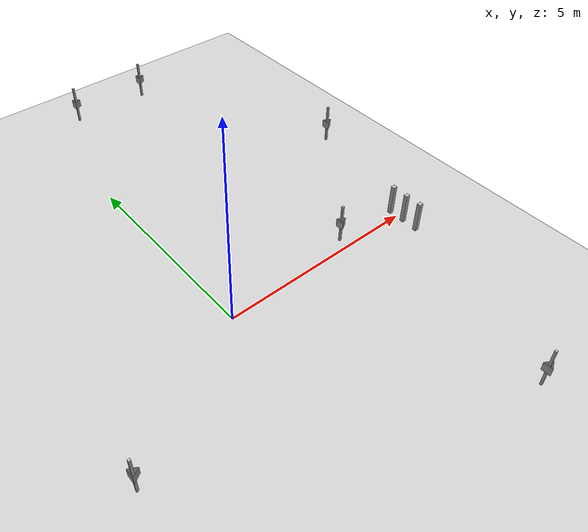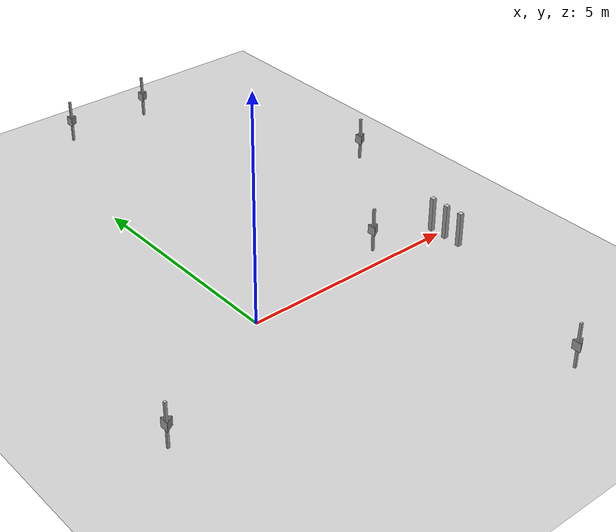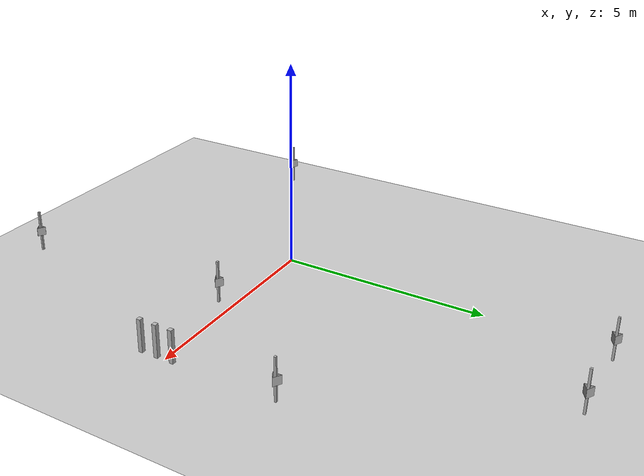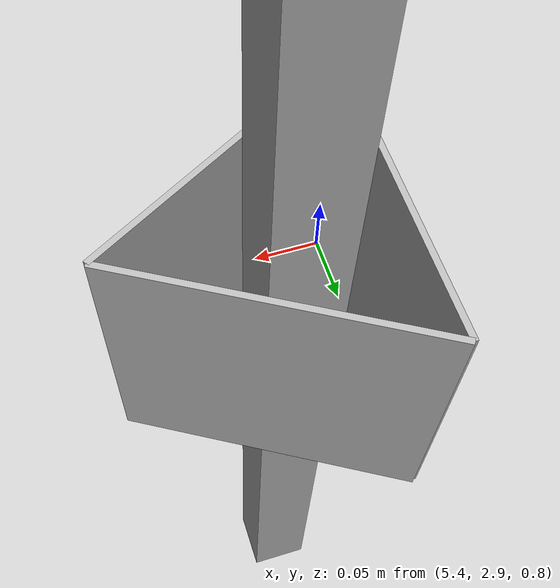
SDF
<sdf version="1.7">
 <world name="default">
  <light name="sun" type="directional">
   <pose>0 0 10 0 -0 0</pose>
   <diffuse>0.8 0.8 0.8 1</diffuse>
   <specular>0.2 0.2 0.2 1</specular>
   <attenuation>
    <range>1000</range>
    <constant>0.9</constant>
    <linear>0.01</linear>
    <quadratic>0.001</quadratic>
   </attenuation>
   <direction>-0.5 0.1 -0.9</direction>
   <spot><inner_angle>0</inner_angle><outer_angle>0</outer_angle><falloff>0</falloff></spot>
  </light>
  <model name="ground_plane">
   <static>1</static>
   <link name="link">
    <collision name="collision">
     <geometry><plane><normal>0 0 1</normal><size>100 100</size></plane></geometry>
     <surface><friction><ode><mu>100</mu><mu2>50</mu2></ode></friction></surface>
    </collision>
    <visual name="visual">
     <cast_shadows>0</cast_shadows>
     <geometry><plane><normal>0 0 1</normal><size>100 100</size></plane></geometry>
     <material>
      <script><uri>file://media/materials/scripts/gazebo.material</uri><name>Gazebo/Grey</name></script>
     </material>
    </visual>
   </link>
  </model>
  <model name="entorno">
   <pose>-0.001458 0.000433 0.381684 -1e-06 -0.003698 -8.5e-05</pose>
   <link name="poste_start">
    <pose>3.06 0 0.5 0 0 0</pose>
    <collision name="collision"><geometry><box><size>0.05 0.05 1.0</size></box></geometry></collision>
    <visual name="visual"><geometry><box><size>0.05 0.05 1.0</size></box></geometry></visual>
   </link>
   <link name="poste_1">
    <pose>3.255 -5.1 0.5 0 0 0</pose>
    <collision name="collision"><geometry><box><size>0.05 0.05 1.0</size></box></geometry></collision>
    <visual name="visual"><geometry><box><size>0.05 0.05 1.0</size></box></geometry></visual>
   </link>
   <link name="poste_2">
    <pose>5.46 3 0.5 0 0 0</pose>
    <collision name="collision"><geometry><box><size>0.05 0.05 1.0</size></box></geometry></collision>
    <visual name="visual"><geometry><box><size>0.05 0.05 1.0</size></box></geometry></visual>
   </link>
   <link name="poste3">
    <pose>-3.545 -2.1 0.5 0 0 0</pose>
    <collision name="collision"><geometry><box><size>0.05 0.05 1.0</size></box></geometry></collision>
    <visual name="visual"><geometry><box><size>0.05 0.05 1.0</size></box></geometry></visual>
   </link>
   <link name="poste_gate_1">
    <pose>.86 8 0.5 0 0 0</pose>
    <collision name="collision"><geometry><box><size>0.05 0.05 1.0</size></box></geometry></collision>
    <visual name="visual"><geometry><box><size>0.05 0.05 1.0</size></box></geometry></visual>
   </link>
   <link name="poste_gate_2">
    <pose>2.86 8 0.5 0 0 0</pose>
    <collision name="collision"><geometry><box><size>0.05 0.05 1.0</size></box></geometry></collision>
    <visual name="visual"><geometry><box><size>0.05 0.05 1.0</size></box></geometry></visual>
   </link>
   <link name="obstacle1">
    <pose>5 0.2 0 0 -0 0</pose>
    <collision name="collision"><geometry><box><size>0.1 0.1 0.8</size></box></geometry></collision>
    <visual name="visual"><geometry><box><size>0.1 0.1 0.8</size></box></geometry></visual>
    <inertial>
     <inertia><ixx>1</ixx><ixy>0</ixy><ixz>0</ixz><iyy>1</iyy><iyz>0</iyz><izz>1</izz></inertia>
     <mass>1</mass>
    </inertial>
   </link>
   <link name="obstacle2">
    <pose>5 -0.2 0 0 -0 0</pose>
    <collision name="collision"><geometry><box><size>0.1 0.1 0.8</size></box></geometry></collision>
    <visual name="visual"><geometry><box><size>0.1 0.1 0.8</size></box></geometry></visual>
    <inertial>
     <inertia><ixx>1</ixx><ixy>0</ixy><ixz>0</ixz><iyy>1</iyy><iyz>0</iyz><izz>1</izz></inertia>
     <mass>1</mass>
    </inertial>
   </link>
   <link name="obstacle3">
    <pose>5 -0.6 0 0 -0 0</pose>
    <collision name="collision"><geometry><box><size>0.1 0.1 0.8</size></box></geometry></collision>
    <visual name="visual"><geometry><box><size>0.1 0.1 0.8</size></box></geometry></visual>
    <inertial>
     <inertia><ixx>1</ixx><ixy>0</ixy><ixz>0</ixz><iyy>1</iyy><iyz>0</iyz><izz>1</izz></inertia>
     <mass>1</mass>
    </inertial>
   </link>
  </model>
  <gravity>0 0 -9.8</gravity>
  <magnetic_field>6e-06 2.3e-05 -4.2e-05</magnetic_field>
  <atmosphere type="adiabatic"/>
  <physics type="ode">
   <max_step_size>0.001</max_step_size>
   <real_time_factor>1</real_time_factor>
   <real_time_update_rate>1000</real_time_update_rate>
  </physics>
  <scene><ambient>0.4 0.4 0.4 1</ambient><background>0.7 0.7 0.7 1</background><shadows>1</shadows></scene>
  <spherical_coordinates>
   <surface_model>EARTH_WGS84</surface_model>
   <latitude_deg>0</latitude_deg>
   <longitude_deg>0</longitude_deg>
   <elevation>0</elevation>
   <heading_deg>0</heading_deg>
  </spherical_coordinates>
  <model name="start">
   <static>1</static>
   <link name="link">
    <visual name="visual">
     <geometry><mesh><uri>model://start/meshes/start.dae</uri><scale>0.4 0.4 0.4</scale></mesh></geometry>
    </visual>
   </link>
   <pose>3 0 0.8 0 -0 3.14159</pose>
  </model>
  <model name="start_1">
   <static>1</static>
   <link name="link">
    <visual name="visual">
     <geometry><mesh><uri>model://start/meshes/start.dae</uri><scale>0.4 0.4 0.4</scale></mesh></geometry>
    </visual>
   </link>
   <pose>3.0866 0.05 0.8 0 -0 1.0472</pose>
  </model>
  <model name="start_1_clone">
   <static>1</static>
   <link name="link">
    <visual name="visual">
     <geometry><mesh><uri>model://start/meshes/start.dae</uri><scale>0.4 0.4 0.4</scale></mesh></geometry>
    </visual>
   </link>
   <pose>3.0866 -0.05 0.8 0 0 -1.0472</pose>
  </model>
  <model name="post1">
   <static>1</static>
   <link name="link">
    <visual name="visual">
     <geometry><mesh><uri>model://post1/meshes/post1.dae</uri><scale>0.4 0.4 0.4</scale></mesh></geometry>
    </visual>
   </link>
   <pose>3.2 -5.1 0.8 0 -0 -3.14159</pose>
  </model>
  <model name="post1_0">
   <static>1</static>
   <link name="link">
    <visual name="visual">
     <geometry><mesh><uri>model://post1/meshes/post1.dae</uri><scale>0.4 0.4 0.4</scale></mesh></geometry>
    </visual>
   </link>
   <pose>3.2866 -5.15 0.8 0 0 -1.0472</pose>
  </model>
  <model name="post1_1">
   <static>1</static>
   <link name="link">
    <visual name="visual">
     <geometry><mesh><uri>model://post1/meshes/post1.dae</uri><scale>0.4 0.4 0.4</scale></mesh></geometry>
    </visual>
   </link>
   <pose>3.2866 -5.05 0.8 0 -0 1.0472</pose>
  </model>
  <model name="post2">
   <static>1</static>
   <link name="link">
    <visual name="visual">
     <geometry><mesh><uri>model://post2/meshes/post2.dae</uri><scale>0.4 0.4 0.4</scale></mesh></geometry>
    </visual>
   </link>
   <pose>5.4 3 0.8 0 -0 -3.14159</pose>
  </model>
  <model name="post2_0">
   <static>1</static>
   <link name="link">
    <visual name="visual">
     <geometry><mesh><uri>model://post2/meshes/post2.dae</uri><scale>0.4 0.4 0.4</scale></mesh></geometry>
    </visual>
   </link>
   <pose>5.4866 3.05 0.8 0 -0 1.0472</pose>
  </model>
  <model name="post2_1">
   <static>1</static>
   <link name="link">
    <visual name="visual">
     <geometry><mesh><uri>model://post2/meshes/post2.dae</uri><scale>0.4 0.4 0.4</scale></mesh></geometry>
    </visual>
   </link>
   <pose>5.4866 2.95 0.8 0 0 -1.0472</pose>
  </model>
  <model name="post3">
   <static>1</static>
   <link name="link">
    <visual name="visual">
     <geometry><mesh><uri>model://post3/meshes/post3.dae</uri><scale>0.4 0.4 0.4</scale></mesh></geometry>
    </visual>
   </link>
   <pose>-3.6 -2.1 0.8 0 -0 3.14159</pose>
  </model>
  <model name="post3_0">
   <static>1</static>
   <link name="link">
    <visual name="visual">
     <geometry><mesh><uri>model://post3/meshes/post3.dae</uri><scale>0.4 0.4 0.4</scale></mesh></geometry>
    </visual>
   </link>
   <pose>-3.5134 -2.05 0.8 0 -0 1.0472</pose>
  </model>
  <model name="post3_1">
   <static>1</static>
   <link name="link">
    <visual name="visual">
     <geometry><mesh><uri>model://post3/meshes/post3.dae</uri><scale>0.4 0.4 0.4</scale></mesh></geometry>
    </visual>
   </link>
   <pose>-3.5134 -2.15 0.8 0 0 -1.0472</pose>
  </model>
  <model name="gate1">
   <static>1</static>
   <link name="link">
    <visual name="visual">
     <geometry><mesh><uri>model://gate1/meshes/gate1.dae</uri><scale>0.4 0.4 0.4</scale></mesh></geometry>
    </visual>
   </link>
   <pose>0.8 8 0.8 0 -0 -3.14159</pose>
  </model>
  <model name="gate1_0">
   <static>1</static>
   <link name="link">
    <visual name="visual">
     <geometry><mesh><uri>model://gate1/meshes/gate1.dae</uri><scale>0.4 0.4 0.4</scale></mesh></geometry>
    </visual>
   </link>
   <pose>0.886602 8.05 0.8 0 -0 1.0472</pose>
  </model>
  <model name="gate1_1">
   <static>1</static>
   <link name="link">
    <visual name="visual">
     <geometry><mesh><uri>model://gate1/meshes/gate1.dae</uri><scale>0.4 0.4 0.4</scale></mesh></geometry>
    </visual>
   </link>
   <pose>0.886602 7.95 0.8 0 0 -1.0472</pose>
  </model>
  <model name="gate2">
   <static>1</static>
   <link name="link">
    <visual name="visual">
     <geometry><mesh><uri>model://gate2/meshes/gate2.dae</uri><scale>0.4 0.4 0.4</scale></mesh></geometry>
    </visual>
   </link>
   <pose>2.8 8 0.8 0 -0 -3.14159</pose>
  </model>
  <model name="gate2_0">
   <static>1</static>
   <link name="link">
    <visual name="visual">
     <geometry><mesh><uri>model://gate2/meshes/gate2.dae</uri><scale>0.4 0.4 0.4</scale></mesh></geometry>
    </visual>
   </link>
   <pose>2.8866 8.05 0.8 0 -0 1.0472</pose>
  </model>
  <model name="gate2_1">
   <static>1</static>
   <link name="link">
    <visual name="visual">
     <geometry><mesh><uri>model://gate2/meshes/gate2.dae</uri><scale>0.4 0.4 0.4</scale></mesh></geometry>
    </visual>
   </link>
   <pose>2.8866 7.95 0.8 0 0 -1.0472</pose>
  </model>
 </world>
</sdf>
